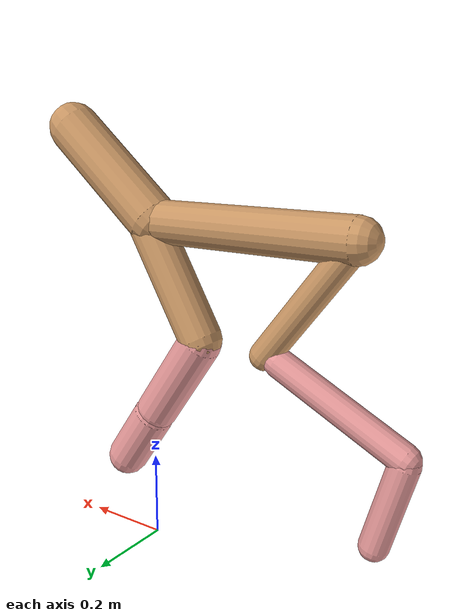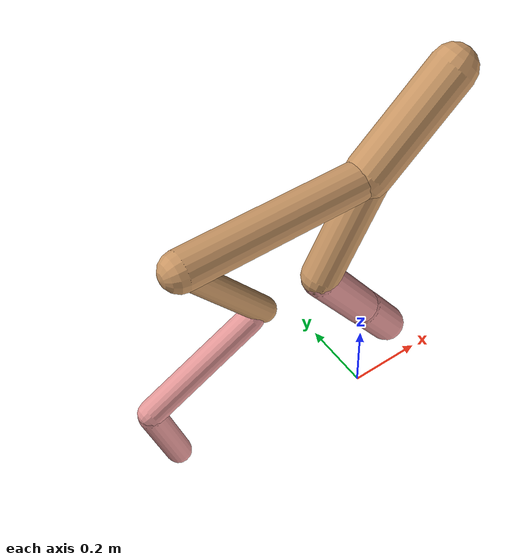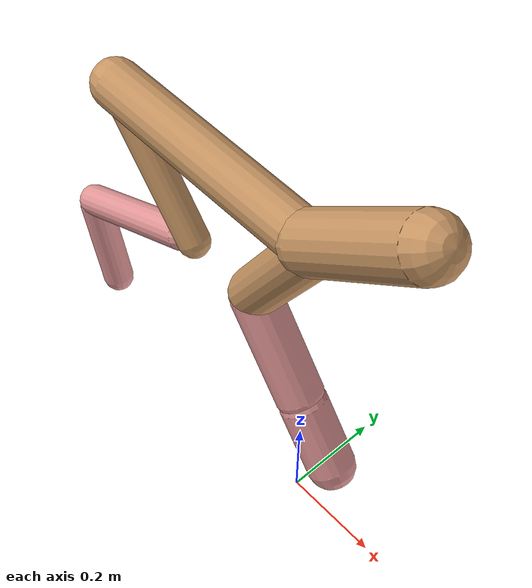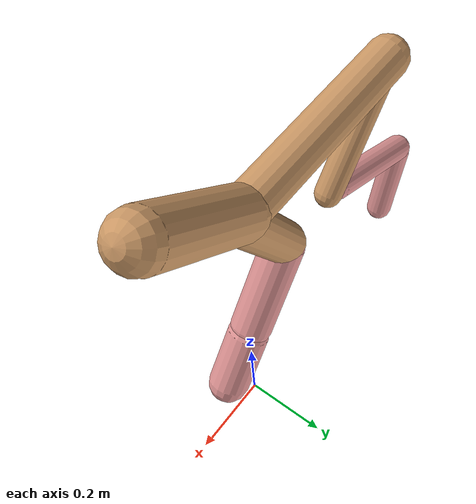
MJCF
<mujoco model="cheetah">
  <compiler angle="radian" coordinate="local" inertiafromgeom="true" settotalmass="14" />
  <default>
    <joint armature=".1" damping=".01" limited="true" solimplimit="0 .8 .03" solreflimit=".02 1" stiffness="8" />
    <geom conaffinity="0" condim="3" contype="1" friction="0.8 .1 .1" rgba="0.8 0.6 .4 1" solimp="0.0 0.8 0.01" solref="0.02 1" />
    <motor ctrllimited="true" ctrlrange="-1 1" />
  </default>
  <size nstack="300000" nuser_geom="1" />
  <option gravity="0 0 -9.81" timestep="0.01" />
  <worldbody>
    <body name="torso" pos="0.0 0.0 0.7650405060288401">
      <joint armature="0" axis="1 0 0" damping="0" limited="false" name="ignorex" pos="0 0 0" stiffness="0" type="slide" />
      <joint armature="0" axis="0 0 1" damping="0" limited="false" name="ignorez" pos="0 0 0" stiffness="0" type="slide" />
      <joint armature="0" axis="0 1 0" damping="0" limited="false" name="ignorey" pos="0 0 0" stiffness="0" type="hinge" />
      <geom fromto="-0.5 0.0 0.0 0.008708231570041858 0.0 0.0" name="torso" size="0.04851404307245338" type="capsule" />
      <geom axisangle="0 1 0 .87" name="head" pos="0.10870823157004184 0.0 0.1" size="0.05789810110622573 0.15" type="capsule" />

      <body name="bthigh" pos="-.5 0 0">
        <joint axis="0 1 0" damping="6" name="bthigh" pos="0 0 0" range="-.52 1.05" stiffness="240" type="hinge" />
        <geom axisangle="0 1 0 -3.8" name="bthigh" pos="0.10487297032241484 0.0 -0.13633486141913928" size="0.0322 0.15299226557134055" type="capsule" />
        <body name="bshin" pos="0.16974594064482967 0.0 -0.26266972283827855">
          <joint axis="0 1 0" damping="4.5" name="bshin" pos="0 0 0" range="-.785 .785" stiffness="180" type="hinge" />
          <geom axisangle="0 1 0 -2.03" name="bshin" pos="-0.14739499963244773 0.0 -0.07369749981622387" rgba="0.9 0.6 0.6 1" size="0.0322 0.15826786093586953" type="capsule" />
          <body name="bfoot" pos="-0.29478999926489546 0.0 -0.14739499963244773">
            <joint axis="0 1 0" damping="3" name="bfoot" pos="0 0 0" range="-.4 .785" stiffness="120" type="hinge" />
            <geom axisangle="0 1 0 -.27" name="bfoot" pos="0.03153088561672452 0.0 -0.10194986349407595" rgba="0.9 0.6 0.6 1" size="0.0322 0.0991811928531449" type="capsule" />
            <inertial mass="10" />
          </body>
        </body>
      </body>
      <body name="fthigh" pos="0.008708231570041858 0.0 0.0">
        <joint axis="0 1 0" damping="4.5" name="fthigh" pos="0 0 0" range="-1.5 0.8" stiffness="180" type="hinge" />
        <geom axisangle="0 1 0 .52" name="fthigh" pos="-0.07440381146424205 0.0 -0.1275493910815578" size="0.04838796002394114 0.14173995772958278" type="capsule" />
        <body name="fshin" pos="-0.1488076229284841 0.0 -0.2550987821631156">
          <joint axis="0 1 0" damping="3" name="fshin" pos="0 0 0" range="-1.2 1.1" stiffness="120" type="hinge" />
          <geom axisangle="0 1 0 -.6" name="fshin" pos="0.0690783401903533 0.0 -0.09564693257125842" rgba="0.9 0.6 0.6 1" size="0.04838796002394114 0.11296568059650959" type="capsule" />
          <body name="ffoot" pos="0.1381566803807066 0.0 -0.19129386514251684">
            <joint axis="0 1 0" damping="1.5" name="ffoot" pos="0 0 0" range="-3.1 -0.3" stiffness="60" type="hinge" />
            <geom axisangle="0 1 0 -.6" name="ffoot" pos="0.04748747288948999 0.0 -0.07386940227253999" rgba="0.9 0.6 0.6 1" size="0.04838796002394114 0.074599977752412" type="capsule" />
            <inertial mass="10" />
          </body>
        </body>
      </body>
    </body>
  </worldbody>
  <actuator>
    <motor gear="120" joint="bthigh" name="bthigh" />
    <motor gear="90" joint="bshin" name="bshin" />
    <motor gear="60" joint="bfoot" name="bfoot" />
    <motor gear="120" joint="fthigh" name="fthigh" />
    <motor gear="60" joint="fshin" name="fshin" />
    <motor gear="30" joint="ffoot" name="ffoot" />
  </actuator>
</mujoco>
